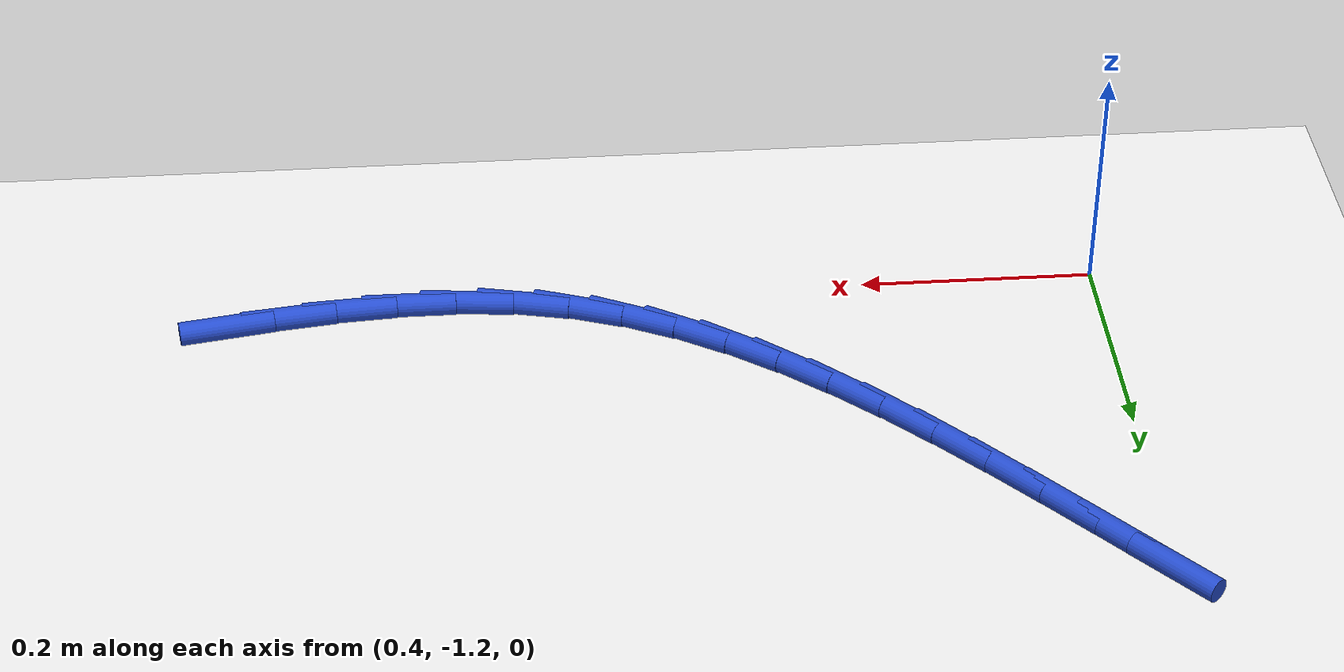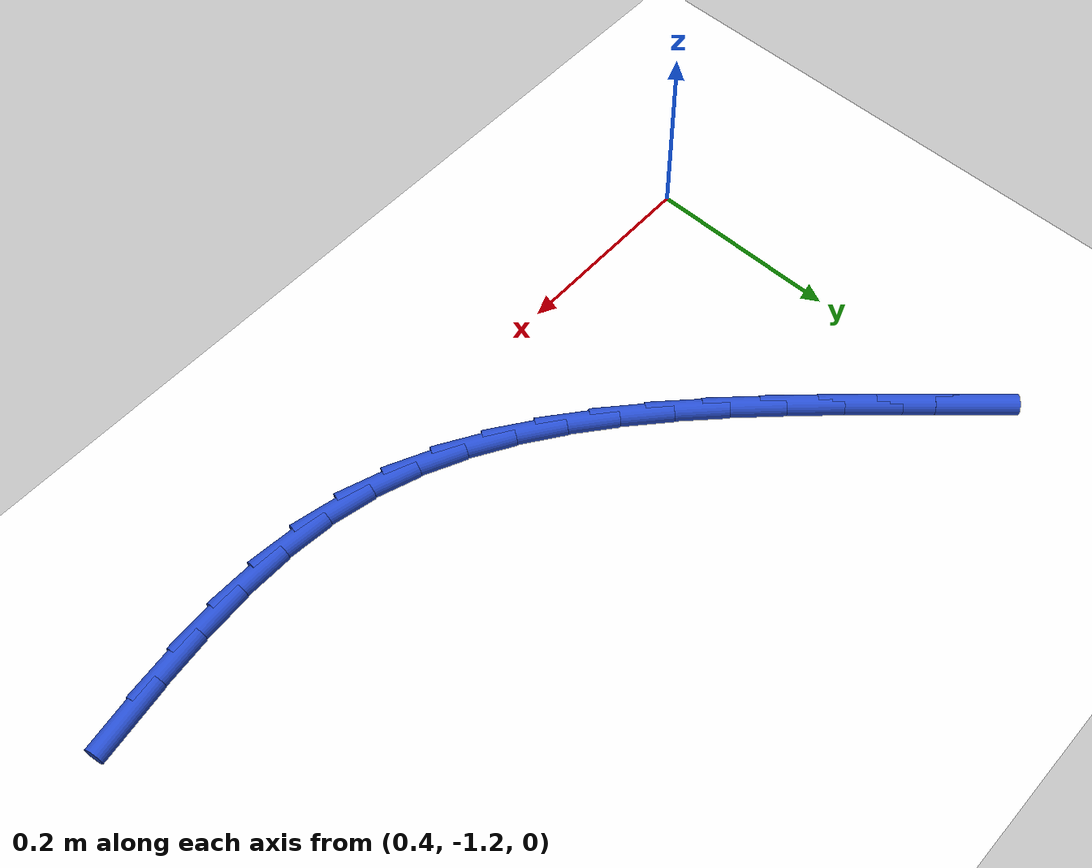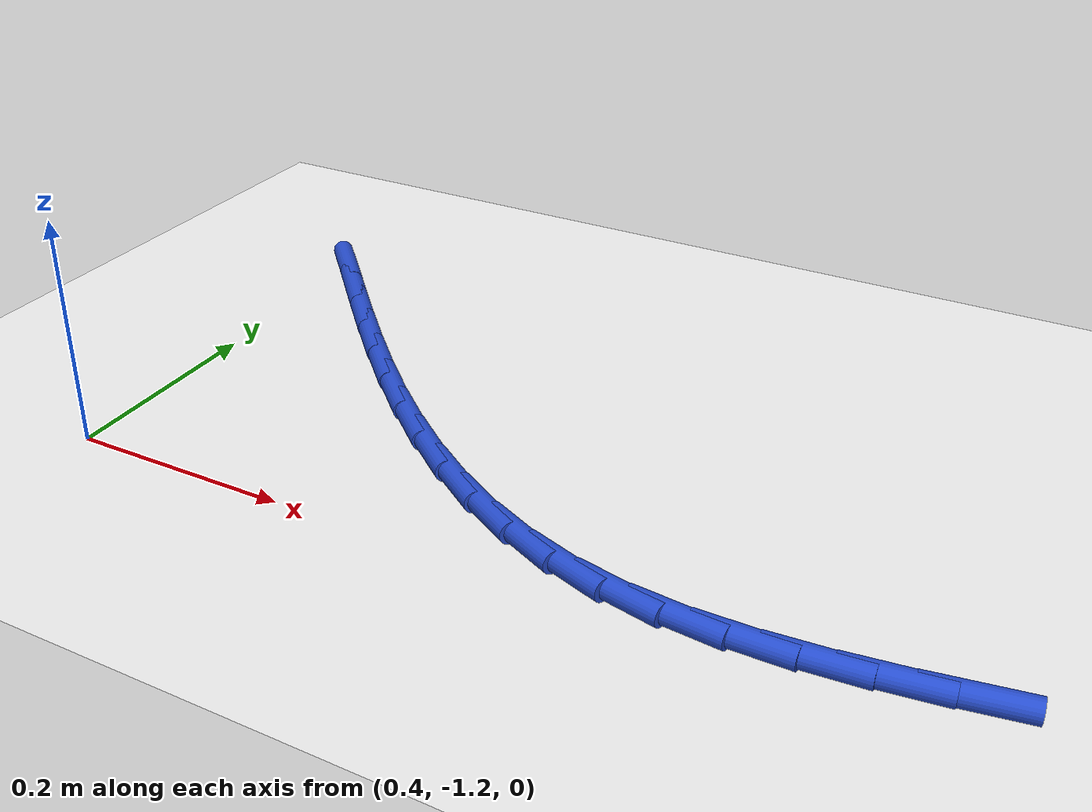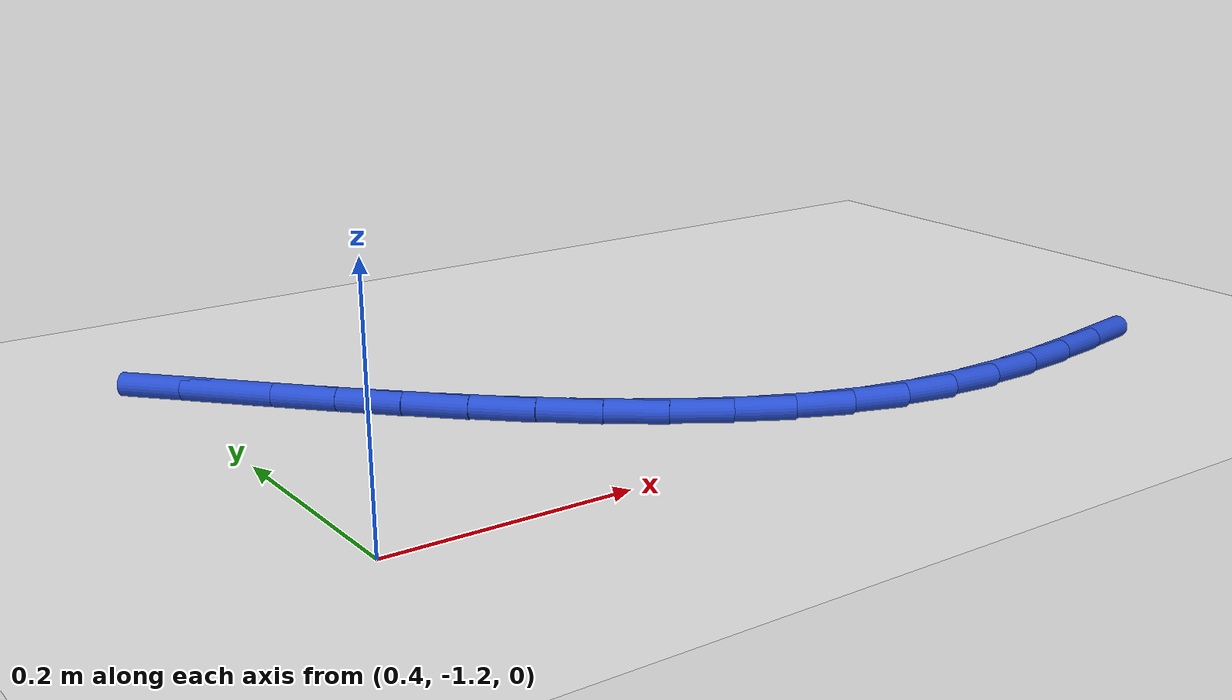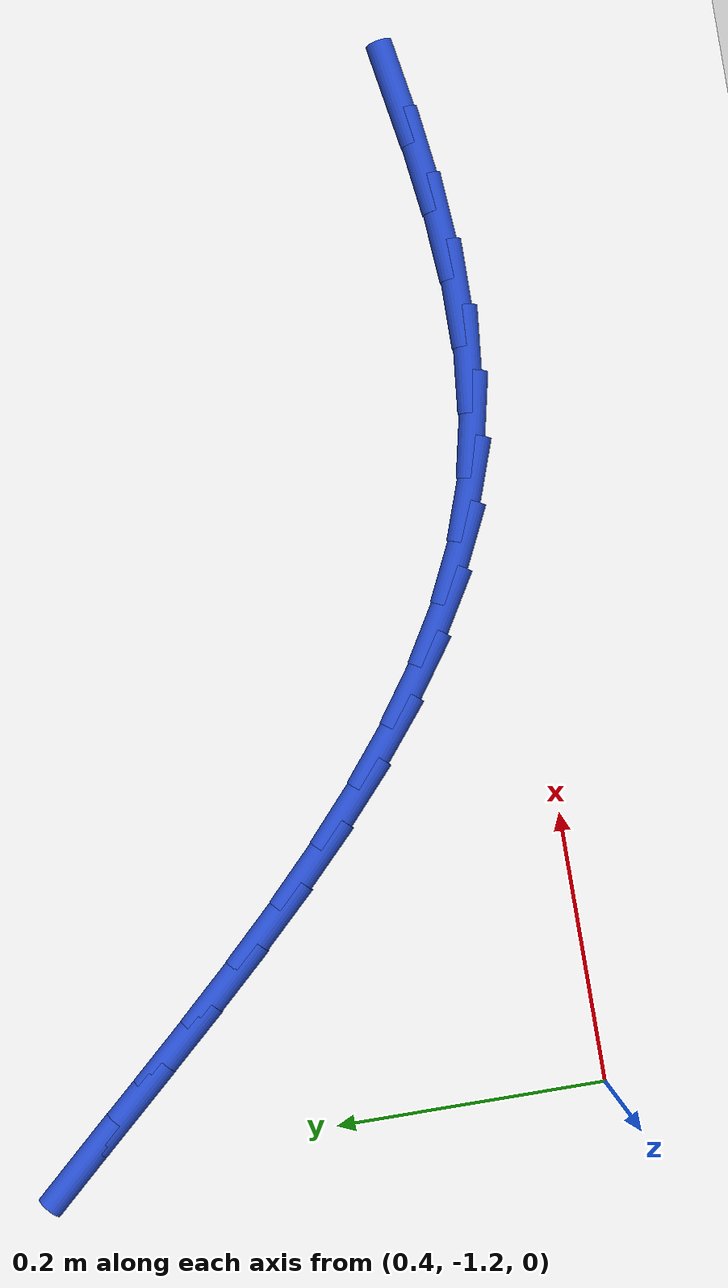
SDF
<sdf version="1.6">
 <world name="default">
  <model name="ground_plane">
   <static>1</static>
   <link name="link">
    <collision name="collision">
     <geometry><plane><normal>0 0 1</normal><size>100 100</size></plane></geometry>
     <surface><friction><ode><mu>100</mu><mu2>50</mu2></ode></friction></surface>
    </collision>
    <visual name="visual">
     <cast_shadows>0</cast_shadows>
     <geometry><plane><normal>0 0 1</normal><size>100 100</size></plane></geometry>
     <material>
      <script><uri>file://media/materials/scripts/gazebo.material</uri><name>Gazebo/WhiteGlow</name></script>
     </material>
    </visual>
   </link>
  </model>
  <model name="line">
   <link name="link_105">
    <pose>1.1441279720568498 -1.1686843557915143 0.01 0 1.57 0.16859886799004956</pose>
    <collision name="collision">
     <geometry><cylinder><radius>0.01</radius><length>0.08</length></cylinder></geometry>
    </collision>
    <visual name="visual">
     <material>
      <script><name>Gazebo/Blue</name><uri>file://media/materials/scripts/gazebo.material</uri></script>
     </material>
     <geometry><cylinder><radius>0.01</radius><length>0.08</length></cylinder></geometry>
    </visual>
   </link>
   <link name="link_106">
    <pose>1.092074695923472 -1.1775445911860916 0.01 0 1.57 0.12993370201168383</pose>
    <collision name="collision">
     <geometry><cylinder><radius>0.01</radius><length>0.08</length></cylinder></geometry>
    </collision>
    <visual name="visual">
     <material>
      <script><name>Gazebo/Blue</name><uri>file://media/materials/scripts/gazebo.material</uri></script>
     </material>
     <geometry><cylinder><radius>0.01</radius><length>0.08</length></cylinder></geometry>
    </visual>
   </link>
   <link name="link_107">
    <pose>1.0407071012539237 -1.1842567889985443 0.01 0 1.57 0.07381714055303015</pose>
    <collision name="collision">
     <geometry><cylinder><radius>0.01</radius><length>0.08</length></cylinder></geometry>
    </collision>
    <visual name="visual">
     <material>
      <script><name>Gazebo/Blue</name><uri>file://media/materials/scripts/gazebo.material</uri></script>
     </material>
     <geometry><cylinder><radius>0.01</radius><length>0.08</length></cylinder></geometry>
    </visual>
   </link>
   <link name="link_108">
    <pose>0.9902171743013756 -1.1879905952975813 0.01 0 1.57 -0.0015163633001445743</pose>
    <collision name="collision">
     <geometry><cylinder><radius>0.01</radius><length>0.08</length></cylinder></geometry>
    </collision>
    <visual name="visual">
     <material>
      <script><name>Gazebo/Blue</name><uri>file://media/materials/scripts/gazebo.material</uri></script>
     </material>
     <geometry><cylinder><radius>0.01</radius><length>0.08</length></cylinder></geometry>
    </visual>
   </link>
   <link name="link_109">
    <pose>0.9407969013189955 -1.1879156561519104 0.01 0 1.57 -0.09757479008593746</pose>
    <collision name="collision">
     <geometry><cylinder><radius>0.01</radius><length>0.08</length></cylinder></geometry>
    </collision>
    <visual name="visual">
     <material>
      <script><name>Gazebo/Blue</name><uri>file://media/materials/scripts/gazebo.material</uri></script>
     </material>
     <geometry><cylinder><radius>0.01</radius><length>0.08</length></cylinder></geometry>
    </visual>
   </link>
   <link name="link_110">
    <pose>0.8926382685599548 -1.18320161763024 0.01 0 1.57 -0.21419650217659716</pose>
    <collision name="collision">
     <geometry><cylinder><radius>0.01</radius><length>0.08</length></cylinder></geometry>
    </collision>
    <visual name="visual">
     <material>
      <script><name>Gazebo/Blue</name><uri>file://media/materials/scripts/gazebo.material</uri></script>
     </material>
     <geometry><cylinder><radius>0.01</radius><length>0.08</length></cylinder></geometry>
    </visual>
   </link>
   <link name="link_111">
    <pose>0.8459282170031825 -1.173040614490115 0.01 0 1.57 -0.3358314097977366</pose>
    <collision name="collision">
     <geometry><cylinder><radius>0.01</radius><length>0.08</length></cylinder></geometry>
    </collision>
    <visual name="visual">
     <material>
      <script><name>Gazebo/Blue</name><uri>file://media/materials/scripts/gazebo.material</uri></script>
     </material>
     <geometry><cylinder><radius>0.01</radius><length>0.08</length></cylinder></geometry>
    </visual>
   </link>
   <link name="link_112">
    <pose>0.8007117094112092 -1.157257631910753 0.01 0 1.57 -0.444438039445981</pose>
    <collision name="collision">
     <geometry><cylinder><radius>0.01</radius><length>0.08</length></cylinder></geometry>
    </collision>
    <visual name="visual">
     <material>
      <script><name>Gazebo/Blue</name><uri>file://media/materials/scripts/gazebo.material</uri></script>
     </material>
     <geometry><cylinder><radius>0.01</radius><length>0.08</length></cylinder></geometry>
    </visual>
   </link>
   <link name="link_113">
    <pose>0.756875624920989 -1.1363822933718306 0.01 0 1.57 -0.5379105293557992</pose>
    <collision name="collision">
     <geometry><cylinder><radius>0.01</radius><length>0.08</length></cylinder></geometry>
    </collision>
    <visual name="visual">
     <material>
      <script><name>Gazebo/Blue</name><uri>file://media/materials/scripts/gazebo.material</uri></script>
     </material>
     <geometry><cylinder><radius>0.01</radius><length>0.08</length></cylinder></geometry>
    </visual>
   </link>
   <link name="link_114">
    <pose>0.714298564650814 -1.1109811206021771 0.01 0 1.57 -0.6164182842172099</pose>
    <collision name="collision">
     <geometry><cylinder><radius>0.01</radius><length>0.08</length></cylinder></geometry>
    </collision>
    <visual name="visual">
     <material>
      <script><name>Gazebo/Blue</name><uri>file://media/materials/scripts/gazebo.material</uri></script>
     </material>
     <geometry><cylinder><radius>0.01</radius><length>0.08</length></cylinder></geometry>
    </visual>
   </link>
   <link name="link_115">
    <pose>0.6728591297189739 -1.08162063533062 0.01 0 1.57 -0.6809653136583226</pose>
    <collision name="collision">
     <geometry><cylinder><radius>0.01</radius><length>0.08</length></cylinder></geometry>
    </collision>
    <visual name="visual">
     <material>
      <script><name>Gazebo/Blue</name><uri>file://media/materials/scripts/gazebo.material</uri></script>
     </material>
     <geometry><cylinder><radius>0.01</radius><length>0.08</length></cylinder></geometry>
    </visual>
   </link>
   <link name="link_116">
    <pose>0.6324359212437581 -1.0488673592859867 0.01 0 1.57 -0.7328710386167161</pose>
    <collision name="collision">
     <geometry><cylinder><radius>0.01</radius><length>0.08</length></cylinder></geometry>
    </collision>
    <visual name="visual">
     <material>
      <script><name>Gazebo/Blue</name><uri>file://media/materials/scripts/gazebo.material</uri></script>
     </material>
     <geometry><cylinder><radius>0.01</radius><length>0.08</length></cylinder></geometry>
    </visual>
   </link>
   <link name="link_117">
    <pose>0.5929075403434565 -1.013287814197105 0.01 0 1.57 -0.7734440512986501</pose>
    <collision name="collision">
     <geometry><cylinder><radius>0.01</radius><length>0.08</length></cylinder></geometry>
    </collision>
    <visual name="visual">
     <material>
      <script><name>Gazebo/Blue</name><uri>file://media/materials/scripts/gazebo.material</uri></script>
     </material>
     <geometry><cylinder><radius>0.01</radius><length>0.08</length></cylinder></geometry>
    </visual>
   </link>
   <link name="link_118">
    <pose>0.554152588136361 -0.975448521792804 0.01 0 1.57 -0.8038102962720763</pose>
    <collision name="collision">
     <geometry><cylinder><radius>0.01</radius><length>0.08</length></cylinder></geometry>
    </collision>
    <visual name="visual">
     <material>
      <script><name>Gazebo/Blue</name><uri>file://media/materials/scripts/gazebo.material</uri></script>
     </material>
     <geometry><cylinder><radius>0.01</radius><length>0.08</length></cylinder></geometry>
    </visual>
   </link>
   <link name="link_119">
    <pose>0.5160496657407606 -0.935916003801911 0.01 0 1.57 -0.8248366150445747</pose>
    <collision name="collision">
     <geometry><cylinder><radius>0.01</radius><length>0.08</length></cylinder></geometry>
    </collision>
    <visual name="visual">
     <material>
      <script><name>Gazebo/Blue</name><uri>file://media/materials/scripts/gazebo.material</uri></script>
     </material>
     <geometry><cylinder><radius>0.01</radius><length>0.08</length></cylinder></geometry>
    </visual>
   </link>
   <link name="link_120">
    <pose>0.47847737427494574 -0.895256781953254 0.01 0 1.57 -0.8371027035568153</pose>
    <collision name="collision">
     <geometry><cylinder><radius>0.01</radius><length>0.08</length></cylinder></geometry>
    </collision>
    <visual name="visual">
     <material>
      <script><name>Gazebo/Blue</name><uri>file://media/materials/scripts/gazebo.material</uri></script>
     </material>
     <geometry><cylinder><radius>0.01</radius><length>0.08</length></cylinder></geometry>
    </visual>
   </link>
   <link name="link_121">
    <pose>0.44131431485720657 -0.8540373779756607 0.01 0 1.57 -0.8408915589071134</pose>
    <collision name="collision">
     <geometry><cylinder><radius>0.01</radius><length>0.08</length></cylinder></geometry>
    </collision>
    <visual name="visual">
     <material>
      <script><name>Gazebo/Blue</name><uri>file://media/materials/scripts/gazebo.material</uri></script>
     </material>
     <geometry><cylinder><radius>0.01</radius><length>0.08</length></cylinder></geometry>
    </visual>
   </link>
   <link name="link_122">
    <pose>0.4044390886058325 -0.8128243135979589 0.01 0 1.57 -0.8362210933923734</pose>
    <collision name="collision">
     <geometry><cylinder><radius>0.01</radius><length>0.08</length></cylinder></geometry>
    </collision>
    <visual name="visual">
     <material>
      <script><name>Gazebo/Blue</name><uri>file://media/materials/scripts/gazebo.material</uri></script>
     </material>
     <geometry><cylinder><radius>0.01</radius><length>0.08</length></cylinder></geometry>
    </visual>
   </link>
  </model>
 </world>
</sdf>
